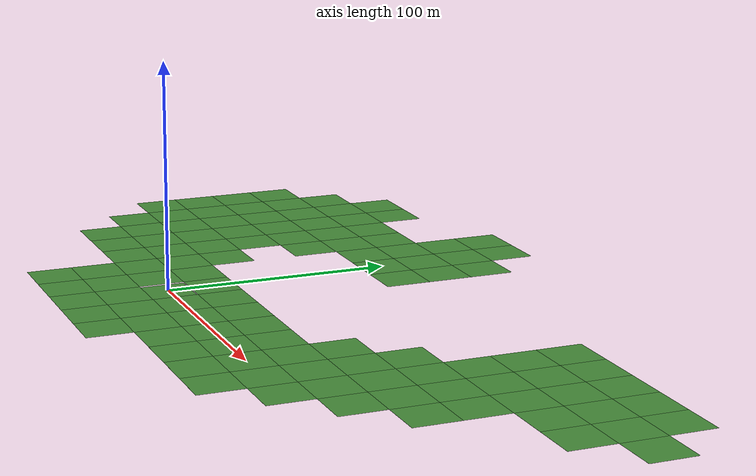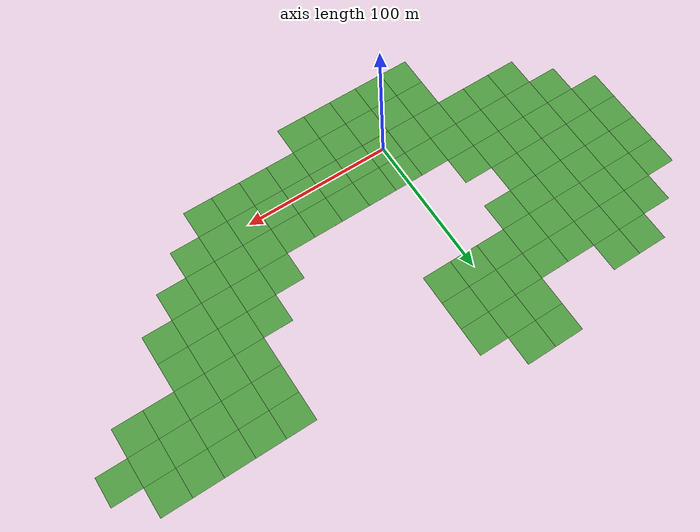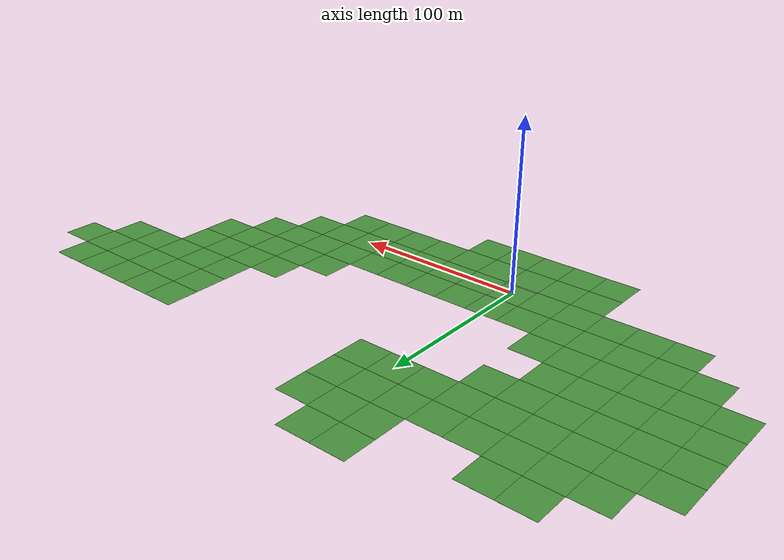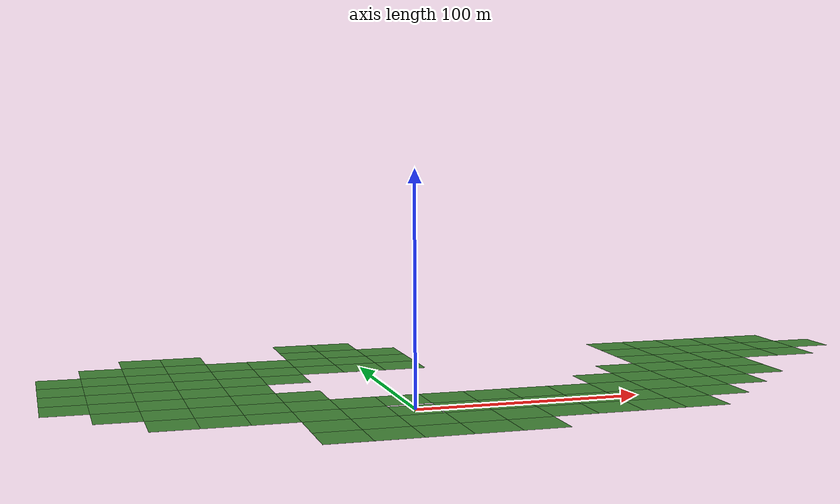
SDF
<?xml version='1.0'?>
<sdf version='1.4'>
  <model name='vrc_grass_plane_2'>
    <static>true</static>
    <link name='link'>
      <collision name='collision'>
        <geometry>
          <plane>
            <normal>0 0 1</normal>
            <size>500 500</size>
          </plane>
        </geometry>
        <surface>
          <friction>
            <ode>
              <mu>0.5</mu>
              <mu2>.5</mu2>
            </ode>
          </friction>
        </surface>
      </collision>

      <visual name='visual_1'>
        <pose>0 0 0 0 0 0</pose>
        <cast_shadows>false</cast_shadows>
        <geometry>
          <plane>
            <normal>0 0 1</normal>
            <size>20 20</size>
          </plane>
        </geometry>
        <material>
          <script>
            <uri>model://grass_plane/materials/scripts</uri>
            <uri>model://grass_plane/materials/textures</uri>
            <name>vrc/grass</name>
          </script>
        </material>
      </visual>
      <visual name='visual_2'>
        <pose>0 100 0 0 0 0</pose>
        <cast_shadows>false</cast_shadows>
        <geometry>
          <plane>
            <normal>0 0 1</normal>
            <size>20 20</size>
          </plane>
        </geometry>
        <material>
          <script>
            <uri>model://grass_plane/materials/scripts</uri>
            <uri>model://grass_plane/materials/textures</uri>
            <name>vrc/grass</name>
          </script>
        </material>
      </visual>
      <visual name='visual_3'>
        <pose>0 120 0 0 0 0</pose>
        <cast_shadows>false</cast_shadows>
        <geometry>
          <plane>
            <normal>0 0 1</normal>
            <size>20 20</size>
          </plane>
        </geometry>
        <material>
          <script>
            <uri>model://grass_plane/materials/scripts</uri>
            <uri>model://grass_plane/materials/textures</uri>
            <name>vrc/grass</name>
          </script>
        </material>
      </visual>
      <visual name='visual_4'>
        <pose>0 140 0 0 0 0</pose>
        <cast_shadows>false</cast_shadows>
        <geometry>
          <plane>
            <normal>0 0 1</normal>
            <size>20 20</size>
          </plane>
        </geometry>
        <material>
          <script>
            <uri>model://grass_plane/materials/scripts</uri>
            <uri>model://grass_plane/materials/textures</uri>
            <name>vrc/grass</name>
          </script>
        </material>
      </visual>
      <visual name='visual_5'>
        <pose>0 160 0 0 0 0</pose>
        <cast_shadows>false</cast_shadows>
        <geometry>
          <plane>
            <normal>0 0 1</normal>
            <size>20 20</size>
          </plane>
        </geometry>
        <material>
          <script>
            <uri>model://grass_plane/materials/scripts</uri>
            <uri>model://grass_plane/materials/textures</uri>
            <name>vrc/grass</name>
          </script>
        </material>
      </visual>
      <visual name='visual_6'>
        <pose>0 20 0 0 0 0</pose>
        <cast_shadows>false</cast_shadows>
        <geometry>
          <plane>
            <normal>0 0 1</normal>
            <size>20 20</size>
          </plane>
        </geometry>
        <material>
          <script>
            <uri>model://grass_plane/materials/scripts</uri>
            <uri>model://grass_plane/materials/textures</uri>
            <name>vrc/grass</name>
          </script>
        </material>
      </visual>
      <visual name='visual_7'>
        <pose>0 -20 0 0 0 0</pose>
        <cast_shadows>false</cast_shadows>
        <geometry>
          <plane>
            <normal>0 0 1</normal>
            <size>20 20</size>
          </plane>
        </geometry>
        <material>
          <script>
            <uri>model://grass_plane/materials/scripts</uri>
            <uri>model://grass_plane/materials/textures</uri>
            <name>vrc/grass</name>
          </script>
        </material>
      </visual>
      <visual name='visual_8'>
        <pose>0 -40 0 0 0 0</pose>
        <cast_shadows>false</cast_shadows>
        <geometry>
          <plane>
            <normal>0 0 1</normal>
            <size>20 20</size>
          </plane>
        </geometry>
        <material>
          <script>
            <uri>model://grass_plane/materials/scripts</uri>
            <uri>model://grass_plane/materials/textures</uri>
            <name>vrc/grass</name>
          </script>
        </material>
      </visual>
      <visual name='visual_9'>
        <pose>-100 0 0 0 0 0</pose>
        <cast_shadows>false</cast_shadows>
        <geometry>
          <plane>
            <normal>0 0 1</normal>
            <size>20 20</size>
          </plane>
        </geometry>
        <material>
          <script>
            <uri>model://grass_plane/materials/scripts</uri>
            <uri>model://grass_plane/materials/textures</uri>
            <name>vrc/grass</name>
          </script>
        </material>
      </visual>
      <visual name='visual_10'>
        <pose>100 0 0 0 0 0</pose>
        <cast_shadows>false</cast_shadows>
        <geometry>
          <plane>
            <normal>0 0 1</normal>
            <size>20 20</size>
          </plane>
        </geometry>
        <material>
          <script>
            <uri>model://grass_plane/materials/scripts</uri>
            <uri>model://grass_plane/materials/textures</uri>
            <name>vrc/grass</name>
          </script>
        </material>
      </visual>
      <visual name='visual_11'>
        <pose>-100 100 0 0 0 0</pose>
        <cast_shadows>false</cast_shadows>
        <geometry>
          <plane>
            <normal>0 0 1</normal>
            <size>20 20</size>
          </plane>
        </geometry>
        <material>
          <script>
            <uri>model://grass_plane/materials/scripts</uri>
            <uri>model://grass_plane/materials/textures</uri>
            <name>vrc/grass</name>
          </script>
        </material>
      </visual>
      <visual name='visual_12'>
        <pose>-100 120 0 0 0 0</pose>
        <cast_shadows>false</cast_shadows>
        <geometry>
          <plane>
            <normal>0 0 1</normal>
            <size>20 20</size>
          </plane>
        </geometry>
        <material>
          <script>
            <uri>model://grass_plane/materials/scripts</uri>
            <uri>model://grass_plane/materials/textures</uri>
            <name>vrc/grass</name>
          </script>
        </material>
      </visual>
      <visual name='visual_13'>
        <pose>-100 140 0 0 0 0</pose>
        <cast_shadows>false</cast_shadows>
        <geometry>
          <plane>
            <normal>0 0 1</normal>
            <size>20 20</size>
          </plane>
        </geometry>
        <material>
          <script>
            <uri>model://grass_plane/materials/scripts</uri>
            <uri>model://grass_plane/materials/textures</uri>
            <name>vrc/grass</name>
          </script>
        </material>
      </visual>
      <visual name='visual_14'>
        <pose>-100 20 0 0 0 0</pose>
        <cast_shadows>false</cast_shadows>
        <geometry>
          <plane>
            <normal>0 0 1</normal>
            <size>20 20</size>
          </plane>
        </geometry>
        <material>
          <script>
            <uri>model://grass_plane/materials/scripts</uri>
            <uri>model://grass_plane/materials/textures</uri>
            <name>vrc/grass</name>
          </script>
        </material>
      </visual>
      <visual name='visual_15'>
        <pose>100 20 0 0 0 0</pose>
        <cast_shadows>false</cast_shadows>
        <geometry>
          <plane>
            <normal>0 0 1</normal>
            <size>20 20</size>
          </plane>
        </geometry>
        <material>
          <script>
            <uri>model://grass_plane/materials/scripts</uri>
            <uri>model://grass_plane/materials/textures</uri>
            <name>vrc/grass</name>
          </script>
        </material>
      </visual>
      <visual name='visual_16'>
        <pose>100 -20 0 0 0 0</pose>
        <cast_shadows>false</cast_shadows>
        <geometry>
          <plane>
            <normal>0 0 1</normal>
            <size>20 20</size>
          </plane>
        </geometry>
        <material>
          <script>
            <uri>model://grass_plane/materials/scripts</uri>
            <uri>model://grass_plane/materials/textures</uri>
            <name>vrc/grass</name>
          </script>
        </material>
      </visual>
      <visual name='visual_17'>
        <pose>-100 40 0 0 0 0</pose>
        <cast_shadows>false</cast_shadows>
        <geometry>
          <plane>
            <normal>0 0 1</normal>
            <size>20 20</size>
          </plane>
        </geometry>
        <material>
          <script>
            <uri>model://grass_plane/materials/scripts</uri>
            <uri>model://grass_plane/materials/textures</uri>
            <name>vrc/grass</name>
          </script>
        </material>
      </visual>
      <visual name='visual_18'>
        <pose>100 40 0 0 0 0</pose>
        <cast_shadows>false</cast_shadows>
        <geometry>
          <plane>
            <normal>0 0 1</normal>
            <size>20 20</size>
          </plane>
        </geometry>
        <material>
          <script>
            <uri>model://grass_plane/materials/scripts</uri>
            <uri>model://grass_plane/materials/textures</uri>
            <name>vrc/grass</name>
          </script>
        </material>
      </visual>
      <visual name='visual_19'>
        <pose>-100 60 0 0 0 0</pose>
        <cast_shadows>false</cast_shadows>
        <geometry>
          <plane>
            <normal>0 0 1</normal>
            <size>20 20</size>
          </plane>
        </geometry>
        <material>
          <script>
            <uri>model://grass_plane/materials/scripts</uri>
            <uri>model://grass_plane/materials/textures</uri>
            <name>vrc/grass</name>
          </script>
        </material>
      </visual>
      <visual name='visual_20'>
        <pose>-100 80 0 0 0 0</pose>
        <cast_shadows>false</cast_shadows>
        <geometry>
          <plane>
            <normal>0 0 1</normal>
            <size>20 20</size>
          </plane>
        </geometry>
        <material>
          <script>
            <uri>model://grass_plane/materials/scripts</uri>
            <uri>model://grass_plane/materials/textures</uri>
            <name>vrc/grass</name>
          </script>
        </material>
      </visual>
      <visual name='visual_21'>
        <pose>120 0 0 0 0 0</pose>
        <cast_shadows>false</cast_shadows>
        <geometry>
          <plane>
            <normal>0 0 1</normal>
            <size>20 20</size>
          </plane>
        </geometry>
        <material>
          <script>
            <uri>model://grass_plane/materials/scripts</uri>
            <uri>model://grass_plane/materials/textures</uri>
            <name>vrc/grass</name>
          </script>
        </material>
      </visual>
      <visual name='visual_22'>
        <pose>-120 100 0 0 0 0</pose>
        <cast_shadows>false</cast_shadows>
        <geometry>
          <plane>
            <normal>0 0 1</normal>
            <size>20 20</size>
          </plane>
        </geometry>
        <material>
          <script>
            <uri>model://grass_plane/materials/scripts</uri>
            <uri>model://grass_plane/materials/textures</uri>
            <name>vrc/grass</name>
          </script>
        </material>
      </visual>
      <visual name='visual_23'>
        <pose>-120 120 0 0 0 0</pose>
        <cast_shadows>false</cast_shadows>
        <geometry>
          <plane>
            <normal>0 0 1</normal>
            <size>20 20</size>
          </plane>
        </geometry>
        <material>
          <script>
            <uri>model://grass_plane/materials/scripts</uri>
            <uri>model://grass_plane/materials/textures</uri>
            <name>vrc/grass</name>
          </script>
        </material>
      </visual>
      <visual name='visual_24'>
        <pose>-120 20 0 0 0 0</pose>
        <cast_shadows>false</cast_shadows>
        <geometry>
          <plane>
            <normal>0 0 1</normal>
            <size>20 20</size>
          </plane>
        </geometry>
        <material>
          <script>
            <uri>model://grass_plane/materials/scripts</uri>
            <uri>model://grass_plane/materials/textures</uri>
            <name>vrc/grass</name>
          </script>
        </material>
      </visual>
      <visual name='visual_25'>
        <pose>120 20 0 0 0 0</pose>
        <cast_shadows>false</cast_shadows>
        <geometry>
          <plane>
            <normal>0 0 1</normal>
            <size>20 20</size>
          </plane>
        </geometry>
        <material>
          <script>
            <uri>model://grass_plane/materials/scripts</uri>
            <uri>model://grass_plane/materials/textures</uri>
            <name>vrc/grass</name>
          </script>
        </material>
      </visual>
      <visual name='visual_26'>
        <pose>120 -20 0 0 0 0</pose>
        <cast_shadows>false</cast_shadows>
        <geometry>
          <plane>
            <normal>0 0 1</normal>
            <size>20 20</size>
          </plane>
        </geometry>
        <material>
          <script>
            <uri>model://grass_plane/materials/scripts</uri>
            <uri>model://grass_plane/materials/textures</uri>
            <name>vrc/grass</name>
          </script>
        </material>
      </visual>
      <visual name='visual_27'>
        <pose>-120 40 0 0 0 0</pose>
        <cast_shadows>false</cast_shadows>
        <geometry>
          <plane>
            <normal>0 0 1</normal>
            <size>20 20</size>
          </plane>
        </geometry>
        <material>
          <script>
            <uri>model://grass_plane/materials/scripts</uri>
            <uri>model://grass_plane/materials/textures</uri>
            <name>vrc/grass</name>
          </script>
        </material>
      </visual>
      <visual name='visual_28'>
        <pose>120 40 0 0 0 0</pose>
        <cast_shadows>false</cast_shadows>
        <geometry>
          <plane>
            <normal>0 0 1</normal>
            <size>20 20</size>
          </plane>
        </geometry>
        <material>
          <script>
            <uri>model://grass_plane/materials/scripts</uri>
            <uri>model://grass_plane/materials/textures</uri>
            <name>vrc/grass</name>
          </script>
        </material>
      </visual>
      <visual name='visual_29'>
        <pose>-120 60 0 0 0 0</pose>
        <cast_shadows>false</cast_shadows>
        <geometry>
          <plane>
            <normal>0 0 1</normal>
            <size>20 20</size>
          </plane>
        </geometry>
        <material>
          <script>
            <uri>model://grass_plane/materials/scripts</uri>
            <uri>model://grass_plane/materials/textures</uri>
            <name>vrc/grass</name>
          </script>
        </material>
      </visual>
      <visual name='visual_30'>
        <pose>120 60 0 0 0 0</pose>
        <cast_shadows>false</cast_shadows>
        <geometry>
          <plane>
            <normal>0 0 1</normal>
            <size>20 20</size>
          </plane>
        </geometry>
        <material>
          <script>
            <uri>model://grass_plane/materials/scripts</uri>
            <uri>model://grass_plane/materials/textures</uri>
            <name>vrc/grass</name>
          </script>
        </material>
      </visual>
      <visual name='visual_31'>
        <pose>-120 80 0 0 0 0</pose>
        <cast_shadows>false</cast_shadows>
        <geometry>
          <plane>
            <normal>0 0 1</normal>
            <size>20 20</size>
          </plane>
        </geometry>
        <material>
          <script>
            <uri>model://grass_plane/materials/scripts</uri>
            <uri>model://grass_plane/materials/textures</uri>
            <name>vrc/grass</name>
          </script>
        </material>
      </visual>
      <visual name='visual_32'>
        <pose>140 0 0 0 0 0</pose>
        <cast_shadows>false</cast_shadows>
        <geometry>
          <plane>
            <normal>0 0 1</normal>
            <size>20 20</size>
          </plane>
        </geometry>
        <material>
          <script>
            <uri>model://grass_plane/materials/scripts</uri>
            <uri>model://grass_plane/materials/textures</uri>
            <name>vrc/grass</name>
          </script>
        </material>
      </visual>
      <visual name='visual_33'>
        <pose>-140 100 0 0 0 0</pose>
        <cast_shadows>false</cast_shadows>
        <geometry>
          <plane>
            <normal>0 0 1</normal>
            <size>20 20</size>
          </plane>
        </geometry>
        <material>
          <script>
            <uri>model://grass_plane/materials/scripts</uri>
            <uri>model://grass_plane/materials/textures</uri>
            <name>vrc/grass</name>
          </script>
        </material>
      </visual>
      <visual name='visual_34'>
        <pose>140 100 0 0 0 0</pose>
        <cast_shadows>false</cast_shadows>
        <geometry>
          <plane>
            <normal>0 0 1</normal>
            <size>20 20</size>
          </plane>
        </geometry>
        <material>
          <script>
            <uri>model://grass_plane/materials/scripts</uri>
            <uri>model://grass_plane/materials/textures</uri>
            <name>vrc/grass</name>
          </script>
        </material>
      </visual>
      <visual name='visual_35'>
        <pose>140 120 0 0 0 0</pose>
        <cast_shadows>false</cast_shadows>
        <geometry>
          <plane>
            <normal>0 0 1</normal>
            <size>20 20</size>
          </plane>
        </geometry>
        <material>
          <script>
            <uri>model://grass_plane/materials/scripts</uri>
            <uri>model://grass_plane/materials/textures</uri>
            <name>vrc/grass</name>
          </script>
        </material>
      </visual>
      <visual name='visual_36'>
        <pose>140 20 0 0 0 0</pose>
        <cast_shadows>false</cast_shadows>
        <geometry>
          <plane>
            <normal>0 0 1</normal>
            <size>20 20</size>
          </plane>
        </geometry>
        <material>
          <script>
            <uri>model://grass_plane/materials/scripts</uri>
            <uri>model://grass_plane/materials/textures</uri>
            <name>vrc/grass</name>
          </script>
        </material>
      </visual>
      <visual name='visual_37'>
        <pose>-140 40 0 0 0 0</pose>
        <cast_shadows>false</cast_shadows>
        <geometry>
          <plane>
            <normal>0 0 1</normal>
            <size>20 20</size>
          </plane>
        </geometry>
        <material>
          <script>
            <uri>model://grass_plane/materials/scripts</uri>
            <uri>model://grass_plane/materials/textures</uri>
            <name>vrc/grass</name>
          </script>
        </material>
      </visual>
      <visual name='visual_38'>
        <pose>140 40 0 0 0 0</pose>
        <cast_shadows>false</cast_shadows>
        <geometry>
          <plane>
            <normal>0 0 1</normal>
            <size>20 20</size>
          </plane>
        </geometry>
        <material>
          <script>
            <uri>model://grass_plane/materials/scripts</uri>
            <uri>model://grass_plane/materials/textures</uri>
            <name>vrc/grass</name>
          </script>
        </material>
      </visual>
      <visual name='visual_39'>
        <pose>-140 60 0 0 0 0</pose>
        <cast_shadows>false</cast_shadows>
        <geometry>
          <plane>
            <normal>0 0 1</normal>
            <size>20 20</size>
          </plane>
        </geometry>
        <material>
          <script>
            <uri>model://grass_plane/materials/scripts</uri>
            <uri>model://grass_plane/materials/textures</uri>
            <name>vrc/grass</name>
          </script>
        </material>
      </visual>
      <visual name='visual_40'>
        <pose>140 60 0 0 0 0</pose>
        <cast_shadows>false</cast_shadows>
        <geometry>
          <plane>
            <normal>0 0 1</normal>
            <size>20 20</size>
          </plane>
        </geometry>
        <material>
          <script>
            <uri>model://grass_plane/materials/scripts</uri>
            <uri>model://grass_plane/materials/textures</uri>
            <name>vrc/grass</name>
          </script>
        </material>
      </visual>
      <visual name='visual_41'>
        <pose>-140 80 0 0 0 0</pose>
        <cast_shadows>false</cast_shadows>
        <geometry>
          <plane>
            <normal>0 0 1</normal>
            <size>20 20</size>
          </plane>
        </geometry>
        <material>
          <script>
            <uri>model://grass_plane/materials/scripts</uri>
            <uri>model://grass_plane/materials/textures</uri>
            <name>vrc/grass</name>
          </script>
        </material>
      </visual>
      <visual name='visual_42'>
        <pose>140 80 0 0 0 0</pose>
        <cast_shadows>false</cast_shadows>
        <geometry>
          <plane>
            <normal>0 0 1</normal>
            <size>20 20</size>
          </plane>
        </geometry>
        <material>
          <script>
            <uri>model://grass_plane/materials/scripts</uri>
            <uri>model://grass_plane/materials/textures</uri>
            <name>vrc/grass</name>
          </script>
        </material>
      </visual>
      <visual name='visual_43'>
        <pose>160 100 0 0 0 0</pose>
        <cast_shadows>false</cast_shadows>
        <geometry>
          <plane>
            <normal>0 0 1</normal>
            <size>20 20</size>
          </plane>
        </geometry>
        <material>
          <script>
            <uri>model://grass_plane/materials/scripts</uri>
            <uri>model://grass_plane/materials/textures</uri>
            <name>vrc/grass</name>
          </script>
        </material>
      </visual>
      <visual name='visual_44'>
        <pose>160 120 0 0 0 0</pose>
        <cast_shadows>false</cast_shadows>
        <geometry>
          <plane>
            <normal>0 0 1</normal>
            <size>20 20</size>
          </plane>
        </geometry>
        <material>
          <script>
            <uri>model://grass_plane/materials/scripts</uri>
            <uri>model://grass_plane/materials/textures</uri>
            <name>vrc/grass</name>
          </script>
        </material>
      </visual>
      <visual name='visual_45'>
        <pose>160 20 0 0 0 0</pose>
        <cast_shadows>false</cast_shadows>
        <geometry>
          <plane>
            <normal>0 0 1</normal>
            <size>20 20</size>
          </plane>
        </geometry>
        <material>
          <script>
            <uri>model://grass_plane/materials/scripts</uri>
            <uri>model://grass_plane/materials/textures</uri>
            <name>vrc/grass</name>
          </script>
        </material>
      </visual>
      <visual name='visual_46'>
        <pose>160 40 0 0 0 0</pose>
        <cast_shadows>false</cast_shadows>
        <geometry>
          <plane>
            <normal>0 0 1</normal>
            <size>20 20</size>
          </plane>
        </geometry>
        <material>
          <script>
            <uri>model://grass_plane/materials/scripts</uri>
            <uri>model://grass_plane/materials/textures</uri>
            <name>vrc/grass</name>
          </script>
        </material>
      </visual>
      <visual name='visual_47'>
        <pose>160 60 0 0 0 0</pose>
        <cast_shadows>false</cast_shadows>
        <geometry>
          <plane>
            <normal>0 0 1</normal>
            <size>20 20</size>
          </plane>
        </geometry>
        <material>
          <script>
            <uri>model://grass_plane/materials/scripts</uri>
            <uri>model://grass_plane/materials/textures</uri>
            <name>vrc/grass</name>
          </script>
        </material>
      </visual>
      <visual name='visual_48'>
        <pose>160 80 0 0 0 0</pose>
        <cast_shadows>false</cast_shadows>
        <geometry>
          <plane>
            <normal>0 0 1</normal>
            <size>20 20</size>
          </plane>
        </geometry>
        <material>
          <script>
            <uri>model://grass_plane/materials/scripts</uri>
            <uri>model://grass_plane/materials/textures</uri>
            <name>vrc/grass</name>
          </script>
        </material>
      </visual>
      <visual name='visual_49'>
        <pose>180 100 0 0 0 0</pose>
        <cast_shadows>false</cast_shadows>
        <geometry>
          <plane>
            <normal>0 0 1</normal>
            <size>20 20</size>
          </plane>
        </geometry>
        <material>
          <script>
            <uri>model://grass_plane/materials/scripts</uri>
            <uri>model://grass_plane/materials/textures</uri>
            <name>vrc/grass</name>
          </script>
        </material>
      </visual>
      <visual name='visual_50'>
        <pose>180 120 0 0 0 0</pose>
        <cast_shadows>false</cast_shadows>
        <geometry>
          <plane>
            <normal>0 0 1</normal>
            <size>20 20</size>
          </plane>
        </geometry>
        <material>
          <script>
            <uri>model://grass_plane/materials/scripts</uri>
            <uri>model://grass_plane/materials/textures</uri>
            <name>vrc/grass</name>
          </script>
        </material>
      </visual>
      <visual name='visual_51'>
        <pose>180 40 0 0 0 0</pose>
        <cast_shadows>false</cast_shadows>
        <geometry>
          <plane>
            <normal>0 0 1</normal>
            <size>20 20</size>
          </plane>
        </geometry>
        <material>
          <script>
            <uri>model://grass_plane/materials/scripts</uri>
            <uri>model://grass_plane/materials/textures</uri>
            <name>vrc/grass</name>
          </script>
        </material>
      </visual>
      <visual name='visual_52'>
        <pose>180 60 0 0 0 0</pose>
        <cast_shadows>false</cast_shadows>
        <geometry>
          <plane>
            <normal>0 0 1</normal>
            <size>20 20</size>
          </plane>
        </geometry>
        <material>
          <script>
            <uri>model://grass_plane/materials/scripts</uri>
            <uri>model://grass_plane/materials/textures</uri>
            <name>vrc/grass</name>
          </script>
        </material>
      </visual>
      <visual name='visual_53'>
        <pose>180 80 0 0 0 0</pose>
        <cast_shadows>false</cast_shadows>
        <geometry>
          <plane>
            <normal>0 0 1</normal>
            <size>20 20</size>
          </plane>
        </geometry>
        <material>
          <script>
            <uri>model://grass_plane/materials/scripts</uri>
            <uri>model://grass_plane/materials/textures</uri>
            <name>vrc/grass</name>
          </script>
        </material>
      </visual>
      <visual name='visual_54'>
        <pose>-20 0 0 0 0 0</pose>
        <cast_shadows>false</cast_shadows>
        <geometry>
          <plane>
            <normal>0 0 1</normal>
            <size>20 20</size>
          </plane>
        </geometry>
        <material>
          <script>
            <uri>model://grass_plane/materials/scripts</uri>
            <uri>model://grass_plane/materials/textures</uri>
            <name>vrc/grass</name>
          </script>
        </material>
      </visual>
      <visual name='visual_55'>
        <pose>20 0 0 0 0 0</pose>
        <cast_shadows>false</cast_shadows>
        <geometry>
          <plane>
            <normal>0 0 1</normal>
            <size>20 20</size>
          </plane>
        </geometry>
        <material>
          <script>
            <uri>model://grass_plane/materials/scripts</uri>
            <uri>model://grass_plane/materials/textures</uri>
            <name>vrc/grass</name>
          </script>
        </material>
      </visual>
      <visual name='visual_56'>
        <pose>200 100 0 0 0 0</pose>
        <cast_shadows>false</cast_shadows>
        <geometry>
          <plane>
            <normal>0 0 1</normal>
            <size>20 20</size>
          </plane>
        </geometry>
        <material>
          <script>
            <uri>model://grass_plane/materials/scripts</uri>
            <uri>model://grass_plane/materials/textures</uri>
            <name>vrc/grass</name>
          </script>
        </material>
      </visual>
      <visual name='visual_57'>
        <pose>200 120 0 0 0 0</pose>
        <cast_shadows>false</cast_shadows>
        <geometry>
          <plane>
            <normal>0 0 1</normal>
            <size>20 20</size>
          </plane>
        </geometry>
        <material>
          <script>
            <uri>model://grass_plane/materials/scripts</uri>
            <uri>model://grass_plane/materials/textures</uri>
            <name>vrc/grass</name>
          </script>
        </material>
      </visual>
      <visual name='visual_58'>
        <pose>200 80 0 0 0 0</pose>
        <cast_shadows>false</cast_shadows>
        <geometry>
          <plane>
            <normal>0 0 1</normal>
            <size>20 20</size>
          </plane>
        </geometry>
        <material>
          <script>
            <uri>model://grass_plane/materials/scripts</uri>
            <uri>model://grass_plane/materials/textures</uri>
            <name>vrc/grass</name>
          </script>
        </material>
      </visual>
      <visual name='visual_59'>
        <pose>-20 100 0 0 0 0</pose>
        <cast_shadows>false</cast_shadows>
        <geometry>
          <plane>
            <normal>0 0 1</normal>
            <size>20 20</size>
          </plane>
        </geometry>
        <material>
          <script>
            <uri>model://grass_plane/materials/scripts</uri>
            <uri>model://grass_plane/materials/textures</uri>
            <name>vrc/grass</name>
          </script>
        </material>
      </visual>
      <visual name='visual_60'>
        <pose>20 100 0 0 0 0</pose>
        <cast_shadows>false</cast_shadows>
        <geometry>
          <plane>
            <normal>0 0 1</normal>
            <size>20 20</size>
          </plane>
        </geometry>
        <material>
          <script>
            <uri>model://grass_plane/materials/scripts</uri>
            <uri>model://grass_plane/materials/textures</uri>
            <name>vrc/grass</name>
          </script>
        </material>
      </visual>
      <visual name='visual_61'>
        <pose>-20 120 0 0 0 0</pose>
        <cast_shadows>false</cast_shadows>
        <geometry>
          <plane>
            <normal>0 0 1</normal>
            <size>20 20</size>
          </plane>
        </geometry>
        <material>
          <script>
            <uri>model://grass_plane/materials/scripts</uri>
            <uri>model://grass_plane/materials/textures</uri>
            <name>vrc/grass</name>
          </script>
        </material>
      </visual>
      <visual name='visual_62'>
        <pose>20 120 0 0 0 0</pose>
        <cast_shadows>false</cast_shadows>
        <geometry>
          <plane>
            <normal>0 0 1</normal>
            <size>20 20</size>
          </plane>
        </geometry>
        <material>
          <script>
            <uri>model://grass_plane/materials/scripts</uri>
            <uri>model://grass_plane/materials/textures</uri>
            <name>vrc/grass</name>
          </script>
        </material>
      </visual>
      <visual name='visual_63'>
        <pose>-20 140 0 0 0 0</pose>
        <cast_shadows>false</cast_shadows>
        <geometry>
          <plane>
            <normal>0 0 1</normal>
            <size>20 20</size>
          </plane>
        </geometry>
        <material>
          <script>
            <uri>model://grass_plane/materials/scripts</uri>
            <uri>model://grass_plane/materials/textures</uri>
            <name>vrc/grass</name>
          </script>
        </material>
      </visual>
      <visual name='visual_64'>
        <pose>20 140 0 0 0 0</pose>
        <cast_shadows>false</cast_shadows>
        <geometry>
          <plane>
            <normal>0 0 1</normal>
            <size>20 20</size>
          </plane>
        </geometry>
        <material>
          <script>
            <uri>model://grass_plane/materials/scripts</uri>
            <uri>model://grass_plane/materials/textures</uri>
            <name>vrc/grass</name>
          </script>
        </material>
      </visual>
      <visual name='visual_65'>
        <pose>-20 160 0 0 0 0</pose>
        <cast_shadows>false</cast_shadows>
        <geometry>
          <plane>
            <normal>0 0 1</normal>
            <size>20 20</size>
          </plane>
        </geometry>
        <material>
          <script>
            <uri>model://grass_plane/materials/scripts</uri>
            <uri>model://grass_plane/materials/textures</uri>
            <name>vrc/grass</name>
          </script>
        </material>
      </visual>
      <visual name='visual_66'>
        <pose>-20 20 0 0 0 0</pose>
        <cast_shadows>false</cast_shadows>
        <geometry>
          <plane>
            <normal>0 0 1</normal>
            <size>20 20</size>
          </plane>
        </geometry>
        <material>
          <script>
            <uri>model://grass_plane/materials/scripts</uri>
            <uri>model://grass_plane/materials/textures</uri>
            <name>vrc/grass</name>
          </script>
        </material>
      </visual>
      <visual name='visual_67'>
        <pose>-20 -20 0 0 0 0</pose>
        <cast_shadows>false</cast_shadows>
        <geometry>
          <plane>
            <normal>0 0 1</normal>
            <size>20 20</size>
          </plane>
        </geometry>
        <material>
          <script>
            <uri>model://grass_plane/materials/scripts</uri>
            <uri>model://grass_plane/materials/textures</uri>
            <name>vrc/grass</name>
          </script>
        </material>
      </visual>
      <visual name='visual_68'>
        <pose>20 20 0 0 0 0</pose>
        <cast_shadows>false</cast_shadows>
        <geometry>
          <plane>
            <normal>0 0 1</normal>
            <size>20 20</size>
          </plane>
        </geometry>
        <material>
          <script>
            <uri>model://grass_plane/materials/scripts</uri>
            <uri>model://grass_plane/materials/textures</uri>
            <name>vrc/grass</name>
          </script>
        </material>
      </visual>
      <visual name='visual_69'>
        <pose>20 -20 0 0 0 0</pose>
        <cast_shadows>false</cast_shadows>
        <geometry>
          <plane>
            <normal>0 0 1</normal>
            <size>20 20</size>
          </plane>
        </geometry>
        <material>
          <script>
            <uri>model://grass_plane/materials/scripts</uri>
            <uri>model://grass_plane/materials/textures</uri>
            <name>vrc/grass</name>
          </script>
        </material>
      </visual>
      <visual name='visual_70'>
        <pose>-20 -40 0 0 0 0</pose>
        <cast_shadows>false</cast_shadows>
        <geometry>
          <plane>
            <normal>0 0 1</normal>
            <size>20 20</size>
          </plane>
        </geometry>
        <material>
          <script>
            <uri>model://grass_plane/materials/scripts</uri>
            <uri>model://grass_plane/materials/textures</uri>
            <name>vrc/grass</name>
          </script>
        </material>
      </visual>
      <visual name='visual_71'>
        <pose>20 -40 0 0 0 0</pose>
        <cast_shadows>false</cast_shadows>
        <geometry>
          <plane>
            <normal>0 0 1</normal>
            <size>20 20</size>
          </plane>
        </geometry>
        <material>
          <script>
            <uri>model://grass_plane/materials/scripts</uri>
            <uri>model://grass_plane/materials/textures</uri>
            <name>vrc/grass</name>
          </script>
        </material>
      </visual>
      <visual name='visual_72'>
        <pose>220 100 0 0 0 0</pose>
        <cast_shadows>false</cast_shadows>
        <geometry>
          <plane>
            <normal>0 0 1</normal>
            <size>20 20</size>
          </plane>
        </geometry>
        <material>
          <script>
            <uri>model://grass_plane/materials/scripts</uri>
            <uri>model://grass_plane/materials/textures</uri>
            <name>vrc/grass</name>
          </script>
        </material>
      </visual>
      <visual name='visual_73'>
        <pose>220 120 0 0 0 0</pose>
        <cast_shadows>false</cast_shadows>
        <geometry>
          <plane>
            <normal>0 0 1</normal>
            <size>20 20</size>
          </plane>
        </geometry>
        <material>
          <script>
            <uri>model://grass_plane/materials/scripts</uri>
            <uri>model://grass_plane/materials/textures</uri>
            <name>vrc/grass</name>
          </script>
        </material>
      </visual>
      <visual name='visual_74'>
        <pose>220 80 0 0 0 0</pose>
        <cast_shadows>false</cast_shadows>
        <geometry>
          <plane>
            <normal>0 0 1</normal>
            <size>20 20</size>
          </plane>
        </geometry>
        <material>
          <script>
            <uri>model://grass_plane/materials/scripts</uri>
            <uri>model://grass_plane/materials/textures</uri>
            <name>vrc/grass</name>
          </script>
        </material>
      </visual>
      <visual name='visual_75'>
        <pose>240 100 0 0 0 0</pose>
        <cast_shadows>false</cast_shadows>
        <geometry>
          <plane>
            <normal>0 0 1</normal>
            <size>20 20</size>
          </plane>
        </geometry>
        <material>
          <script>
            <uri>model://grass_plane/materials/scripts</uri>
            <uri>model://grass_plane/materials/textures</uri>
            <name>vrc/grass</name>
          </script>
        </material>
      </visual>
      <visual name='visual_76'>
        <pose>-40 0 0 0 0 0</pose>
        <cast_shadows>false</cast_shadows>
        <geometry>
          <plane>
            <normal>0 0 1</normal>
            <size>20 20</size>
          </plane>
        </geometry>
        <material>
          <script>
            <uri>model://grass_plane/materials/scripts</uri>
            <uri>model://grass_plane/materials/textures</uri>
            <name>vrc/grass</name>
          </script>
        </material>
      </visual>
      <visual name='visual_77'>
        <pose>40 0 0 0 0 0</pose>
        <cast_shadows>false</cast_shadows>
        <geometry>
          <plane>
            <normal>0 0 1</normal>
            <size>20 20</size>
          </plane>
        </geometry>
        <material>
          <script>
            <uri>model://grass_plane/materials/scripts</uri>
            <uri>model://grass_plane/materials/textures</uri>
            <name>vrc/grass</name>
          </script>
        </material>
      </visual>
      <visual name='visual_78'>
        <pose>-40 100 0 0 0 0</pose>
        <cast_shadows>false</cast_shadows>
        <geometry>
          <plane>
            <normal>0 0 1</normal>
            <size>20 20</size>
          </plane>
        </geometry>
        <material>
          <script>
            <uri>model://grass_plane/materials/scripts</uri>
            <uri>model://grass_plane/materials/textures</uri>
            <name>vrc/grass</name>
          </script>
        </material>
      </visual>
      <visual name='visual_79'>
        <pose>-40 120 0 0 0 0</pose>
        <cast_shadows>false</cast_shadows>
        <geometry>
          <plane>
            <normal>0 0 1</normal>
            <size>20 20</size>
          </plane>
        </geometry>
        <material>
          <script>
            <uri>model://grass_plane/materials/scripts</uri>
            <uri>model://grass_plane/materials/textures</uri>
            <name>vrc/grass</name>
          </script>
        </material>
      </visual>
      <visual name='visual_80'>
        <pose>-40 20 0 0 0 0</pose>
        <cast_shadows>false</cast_shadows>
        <geometry>
          <plane>
            <normal>0 0 1</normal>
            <size>20 20</size>
          </plane>
        </geometry>
        <material>
          <script>
            <uri>model://grass_plane/materials/scripts</uri>
            <uri>model://grass_plane/materials/textures</uri>
            <name>vrc/grass</name>
          </script>
        </material>
      </visual>
      <visual name='visual_81'>
        <pose>-40 -20 0 0 0 0</pose>
        <cast_shadows>false</cast_shadows>
        <geometry>
          <plane>
            <normal>0 0 1</normal>
            <size>20 20</size>
          </plane>
        </geometry>
        <material>
          <script>
            <uri>model://grass_plane/materials/scripts</uri>
            <uri>model://grass_plane/materials/textures</uri>
            <name>vrc/grass</name>
          </script>
        </material>
      </visual>
      <visual name='visual_82'>
        <pose>40 20 0 0 0 0</pose>
        <cast_shadows>false</cast_shadows>
        <geometry>
          <plane>
            <normal>0 0 1</normal>
            <size>20 20</size>
          </plane>
        </geometry>
        <material>
          <script>
            <uri>model://grass_plane/materials/scripts</uri>
            <uri>model://grass_plane/materials/textures</uri>
            <name>vrc/grass</name>
          </script>
        </material>
      </visual>
      <visual name='visual_83'>
        <pose>40 -20 0 0 0 0</pose>
        <cast_shadows>false</cast_shadows>
        <geometry>
          <plane>
            <normal>0 0 1</normal>
            <size>20 20</size>
          </plane>
        </geometry>
        <material>
          <script>
            <uri>model://grass_plane/materials/scripts</uri>
            <uri>model://grass_plane/materials/textures</uri>
            <name>vrc/grass</name>
          </script>
        </material>
      </visual>
      <visual name='visual_84'>
        <pose>-40 40 0 0 0 0</pose>
        <cast_shadows>false</cast_shadows>
        <geometry>
          <plane>
            <normal>0 0 1</normal>
            <size>20 20</size>
          </plane>
        </geometry>
        <material>
          <script>
            <uri>model://grass_plane/materials/scripts</uri>
            <uri>model://grass_plane/materials/textures</uri>
            <name>vrc/grass</name>
          </script>
        </material>
      </visual>
      <visual name='visual_85'>
        <pose>-40 -40 0 0 0 0</pose>
        <cast_shadows>false</cast_shadows>
        <geometry>
          <plane>
            <normal>0 0 1</normal>
            <size>20 20</size>
          </plane>
        </geometry>
        <material>
          <script>
            <uri>model://grass_plane/materials/scripts</uri>
            <uri>model://grass_plane/materials/textures</uri>
            <name>vrc/grass</name>
          </script>
        </material>
      </visual>
      <visual name='visual_86'>
        <pose>40 -40 0 0 0 0</pose>
        <cast_shadows>false</cast_shadows>
        <geometry>
          <plane>
            <normal>0 0 1</normal>
            <size>20 20</size>
          </plane>
        </geometry>
        <material>
          <script>
            <uri>model://grass_plane/materials/scripts</uri>
            <uri>model://grass_plane/materials/textures</uri>
            <name>vrc/grass</name>
          </script>
        </material>
      </visual>
      <visual name='visual_87'>
        <pose>-40 80 0 0 0 0</pose>
        <cast_shadows>false</cast_shadows>
        <geometry>
          <plane>
            <normal>0 0 1</normal>
            <size>20 20</size>
          </plane>
        </geometry>
        <material>
          <script>
            <uri>model://grass_plane/materials/scripts</uri>
            <uri>model://grass_plane/materials/textures</uri>
            <name>vrc/grass</name>
          </script>
        </material>
      </visual>
      <visual name='visual_88'>
        <pose>-60 0 0 0 0 0</pose>
        <cast_shadows>false</cast_shadows>
        <geometry>
          <plane>
            <normal>0 0 1</normal>
            <size>20 20</size>
          </plane>
        </geometry>
        <material>
          <script>
            <uri>model://grass_plane/materials/scripts</uri>
            <uri>model://grass_plane/materials/textures</uri>
            <name>vrc/grass</name>
          </script>
        </material>
      </visual>
      <visual name='visual_89'>
        <pose>60 0 0 0 0 0</pose>
        <cast_shadows>false</cast_shadows>
        <geometry>
          <plane>
            <normal>0 0 1</normal>
            <size>20 20</size>
          </plane>
        </geometry>
        <material>
          <script>
            <uri>model://grass_plane/materials/scripts</uri>
            <uri>model://grass_plane/materials/textures</uri>
            <name>vrc/grass</name>
          </script>
        </material>
      </visual>
      <visual name='visual_90'>
        <pose>-60 100 0 0 0 0</pose>
        <cast_shadows>false</cast_shadows>
        <geometry>
          <plane>
            <normal>0 0 1</normal>
            <size>20 20</size>
          </plane>
        </geometry>
        <material>
          <script>
            <uri>model://grass_plane/materials/scripts</uri>
            <uri>model://grass_plane/materials/textures</uri>
            <name>vrc/grass</name>
          </script>
        </material>
      </visual>
      <visual name='visual_91'>
        <pose>-60 120 0 0 0 0</pose>
        <cast_shadows>false</cast_shadows>
        <geometry>
          <plane>
            <normal>0 0 1</normal>
            <size>20 20</size>
          </plane>
        </geometry>
        <material>
          <script>
            <uri>model://grass_plane/materials/scripts</uri>
            <uri>model://grass_plane/materials/textures</uri>
            <name>vrc/grass</name>
          </script>
        </material>
      </visual>
      <visual name='visual_92'>
        <pose>-60 20 0 0 0 0</pose>
        <cast_shadows>false</cast_shadows>
        <geometry>
          <plane>
            <normal>0 0 1</normal>
            <size>20 20</size>
          </plane>
        </geometry>
        <material>
          <script>
            <uri>model://grass_plane/materials/scripts</uri>
            <uri>model://grass_plane/materials/textures</uri>
            <name>vrc/grass</name>
          </script>
        </material>
      </visual>
      <visual name='visual_93'>
        <pose>60 20 0 0 0 0</pose>
        <cast_shadows>false</cast_shadows>
        <geometry>
          <plane>
            <normal>0 0 1</normal>
            <size>20 20</size>
          </plane>
        </geometry>
        <material>
          <script>
            <uri>model://grass_plane/materials/scripts</uri>
            <uri>model://grass_plane/materials/textures</uri>
            <name>vrc/grass</name>
          </script>
        </material>
      </visual>
      <visual name='visual_94'>
        <pose>60 -20 0 0 0 0</pose>
        <cast_shadows>false</cast_shadows>
        <geometry>
          <plane>
            <normal>0 0 1</normal>
            <size>20 20</size>
          </plane>
        </geometry>
        <material>
          <script>
            <uri>model://grass_plane/materials/scripts</uri>
            <uri>model://grass_plane/materials/textures</uri>
            <name>vrc/grass</name>
          </script>
        </material>
      </visual>
      <visual name='visual_95'>
        <pose>-60 40 0 0 0 0</pose>
        <cast_shadows>false</cast_shadows>
        <geometry>
          <plane>
            <normal>0 0 1</normal>
            <size>20 20</size>
          </plane>
        </geometry>
        <material>
          <script>
            <uri>model://grass_plane/materials/scripts</uri>
            <uri>model://grass_plane/materials/textures</uri>
            <name>vrc/grass</name>
          </script>
        </material>
      </visual>
      <visual name='visual_96'>
        <pose>-60 60 0 0 0 0</pose>
        <cast_shadows>false</cast_shadows>
        <geometry>
          <plane>
            <normal>0 0 1</normal>
            <size>20 20</size>
          </plane>
        </geometry>
        <material>
          <script>
            <uri>model://grass_plane/materials/scripts</uri>
            <uri>model://grass_plane/materials/textures</uri>
            <name>vrc/grass</name>
          </script>
        </material>
      </visual>
      <visual name='visual_97'>
        <pose>-60 80 0 0 0 0</pose>
        <cast_shadows>false</cast_shadows>
        <geometry>
          <plane>
            <normal>0 0 1</normal>
            <size>20 20</size>
          </plane>
        </geometry>
        <material>
          <script>
            <uri>model://grass_plane/materials/scripts</uri>
            <uri>model://grass_plane/materials/textures</uri>
            <name>vrc/grass</name>
          </script>
        </material>
      </visual>
      <visual name='visual_98'>
        <pose>-80 0 0 0 0 0</pose>
        <cast_shadows>false</cast_shadows>
        <geometry>
          <plane>
            <normal>0 0 1</normal>
            <size>20 20</size>
          </plane>
        </geometry>
        <material>
          <script>
            <uri>model://grass_plane/materials/scripts</uri>
            <uri>model://grass_plane/materials/textures</uri>
            <name>vrc/grass</name>
          </script>
        </material>
      </visual>
      <visual name='visual_99'>
        <pose>80 0 0 0 0 0</pose>
        <cast_shadows>false</cast_shadows>
        <geometry>
          <plane>
            <normal>0 0 1</normal>
            <size>20 20</size>
          </plane>
        </geometry>
        <material>
          <script>
            <uri>model://grass_plane/materials/scripts</uri>
            <uri>model://grass_plane/materials/textures</uri>
            <name>vrc/grass</name>
          </script>
        </material>
      </visual>
      <visual name='visual_100'>
        <pose>-80 100 0 0 0 0</pose>
        <cast_shadows>false</cast_shadows>
        <geometry>
          <plane>
            <normal>0 0 1</normal>
            <size>20 20</size>
          </plane>
        </geometry>
        <material>
          <script>
            <uri>model://grass_plane/materials/scripts</uri>
            <uri>model://grass_plane/materials/textures</uri>
            <name>vrc/grass</name>
          </script>
        </material>
      </visual>
      <visual name='visual_101'>
        <pose>-80 120 0 0 0 0</pose>
        <cast_shadows>false</cast_shadows>
        <geometry>
          <plane>
            <normal>0 0 1</normal>
            <size>20 20</size>
          </plane>
        </geometry>
        <material>
          <script>
            <uri>model://grass_plane/materials/scripts</uri>
            <uri>model://grass_plane/materials/textures</uri>
            <name>vrc/grass</name>
          </script>
        </material>
      </visual>
      <visual name='visual_102'>
        <pose>-80 140 0 0 0 0</pose>
        <cast_shadows>false</cast_shadows>
        <geometry>
          <plane>
            <normal>0 0 1</normal>
            <size>20 20</size>
          </plane>
        </geometry>
        <material>
          <script>
            <uri>model://grass_plane/materials/scripts</uri>
            <uri>model://grass_plane/materials/textures</uri>
            <name>vrc/grass</name>
          </script>
        </material>
      </visual>
      <visual name='visual_103'>
        <pose>-80 20 0 0 0 0</pose>
        <cast_shadows>false</cast_shadows>
        <geometry>
          <plane>
            <normal>0 0 1</normal>
            <size>20 20</size>
          </plane>
        </geometry>
        <material>
          <script>
            <uri>model://grass_plane/materials/scripts</uri>
            <uri>model://grass_plane/materials/textures</uri>
            <name>vrc/grass</name>
          </script>
        </material>
      </visual>
      <visual name='visual_104'>
        <pose>80 20 0 0 0 0</pose>
        <cast_shadows>false</cast_shadows>
        <geometry>
          <plane>
            <normal>0 0 1</normal>
            <size>20 20</size>
          </plane>
        </geometry>
        <material>
          <script>
            <uri>model://grass_plane/materials/scripts</uri>
            <uri>model://grass_plane/materials/textures</uri>
            <name>vrc/grass</name>
          </script>
        </material>
      </visual>
      <visual name='visual_105'>
        <pose>80 -20 0 0 0 0</pose>
        <cast_shadows>false</cast_shadows>
        <geometry>
          <plane>
            <normal>0 0 1</normal>
            <size>20 20</size>
          </plane>
        </geometry>
        <material>
          <script>
            <uri>model://grass_plane/materials/scripts</uri>
            <uri>model://grass_plane/materials/textures</uri>
            <name>vrc/grass</name>
          </script>
        </material>
      </visual>
      <visual name='visual_106'>
        <pose>-80 40 0 0 0 0</pose>
        <cast_shadows>false</cast_shadows>
        <geometry>
          <plane>
            <normal>0 0 1</normal>
            <size>20 20</size>
          </plane>
        </geometry>
        <material>
          <script>
            <uri>model://grass_plane/materials/scripts</uri>
            <uri>model://grass_plane/materials/textures</uri>
            <name>vrc/grass</name>
          </script>
        </material>
      </visual>
      <visual name='visual_107'>
        <pose>-80 60 0 0 0 0</pose>
        <cast_shadows>false</cast_shadows>
        <geometry>
          <plane>
            <normal>0 0 1</normal>
            <size>20 20</size>
          </plane>
        </geometry>
        <material>
          <script>
            <uri>model://grass_plane/materials/scripts</uri>
            <uri>model://grass_plane/materials/textures</uri>
            <name>vrc/grass</name>
          </script>
        </material>
      </visual>
      <visual name='visual_108'>
        <pose>-80 80 0 0 0 0</pose>
        <cast_shadows>false</cast_shadows>
        <geometry>
          <plane>
            <normal>0 0 1</normal>
            <size>20 20</size>
          </plane>
        </geometry>
        <material>
          <script>
            <uri>model://grass_plane/materials/scripts</uri>
            <uri>model://grass_plane/materials/textures</uri>
            <name>vrc/grass</name>
          </script>
        </material>
      </visual>

    </link>
  </model>
</sdf>
